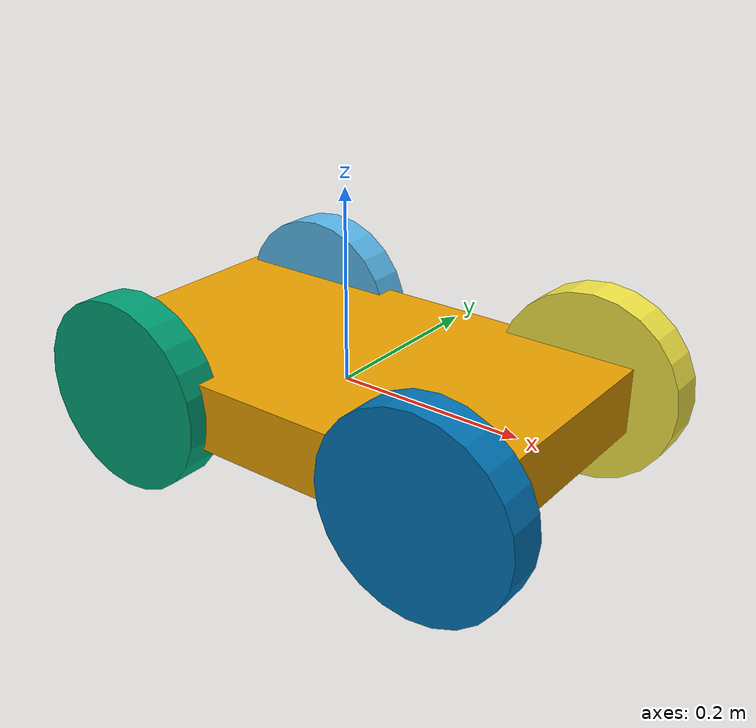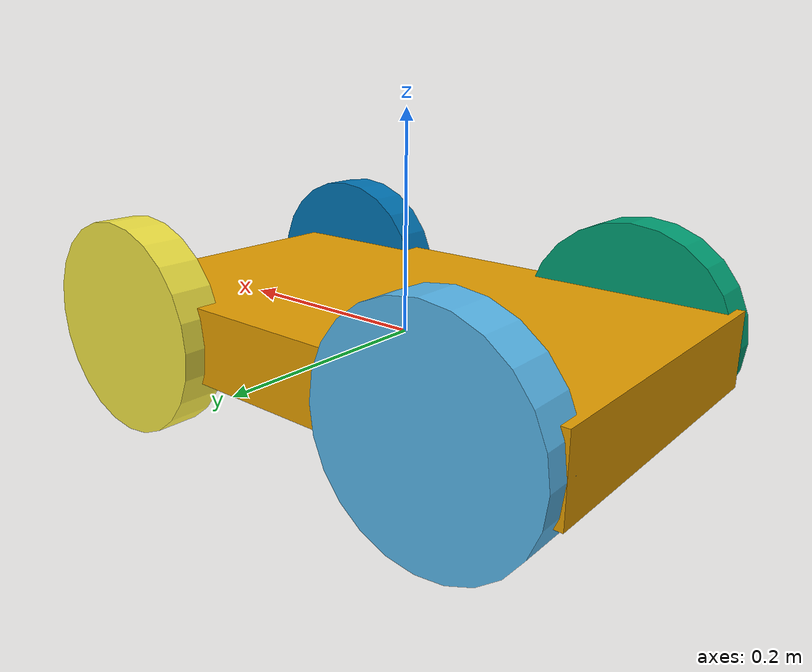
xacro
<?xml version="1.0" ?>
<robot name="s2w" xmlns:xacro="https://www.ros.org/wiki/xacro">
    <!--linkki on pala robottia, voidaan määritellä matemaattisesti esim pallo, tai
    käyttää 3d mallinnettua palaa-->

    <!--                 LINK CHASSIS                  -->
    <link name="link_chassis">
        <pose>0 0 0.1 </pose> <!--xyz,roll,pich,yaw RPY-->
        <inertial>
            <mass value="5"/>
            <origin rpy="0 0 0" xyz="0 0 0.1"/>
            <inertia ixx="0.0395" ixy="0" ixz="0" iyy="0.1062" iyz="0" izz="0.1062"/>
        </inertial>

        <collision name="collision_chassis">
            <geometry>
                <box size="0.5 0.3 0.07"/>
            </geometry>
        </collision>

        <visual>
            <geometry>
                <box size="0.5 0.3 0.07"/>
            </geometry>
        </visual>
    </link>

    <!--                 LINK RIGHT WHEEL                  -->
    <link name="link_right_wheel">
        <inertial>
            <mass value="0.2"/>
            <origin rpy="0 1.5707 1.5707" xyz="0 0 0"/>
            <inertia ixx="0.0005266" ixy="0" ixz="0" iyy="0.0005266" iyz="0" izz="0.001"/>
        </inertial>

        <collision name="collision_right_wheel">
            <geometry>
                <cylinder lenght="0.04" radius="0.1"/>
            </geometry>
        </collision>

        <visual>
            <geometry>
                <cylinder length="0.04" radius="0.1"/>
            </geometry>
        </visual>
    </link>

    <joint name="joint_right_wheel" type="continuous">
        <origin rpy="0 1.5707 1.5707" xyz="-0.15 0.15 0"/>
        <child link="link_right_wheel"/>
        <parent link="link_chassis"/>
        <axis rpy="0 0 0" xyz="0 1 0"/>
        <limit effort="100" velocity="100"/>
        <joint_properties damping="1.0" friction="1.0"/>
    </joint>

    <!--                 LINK LEFT WHEEL                  -->
    <link name="link_left_wheel">
        <inertial>
            <mass value="0.2"/>
            <origin rpy="0 1.5707 1.5707" xyz="0 0 0"/>
            <inertia ixx="0.0005266" ixy="0" ixz="0" iyy="0.0005266" iyz="0" izz="0.001"/>
        </inertial>

        <collision name="collision_left_wheel">
            <geometry>
                <cylinder lenght="0.04" radius="0.1"/>
            </geometry>
        </collision>

        <visual>
            <geometry>
                <cylinder length="0.04" radius="0.1"/>
            </geometry>
        </visual>
    </link>
    <joint name="joint_left_wheel" type="continuous">
        <origin rpy="0 1.5707 1.5707" xyz="-0.15 -0.15 0"/>
        <child link="link_left_wheel"/>
        <parent link="link_chassis"/>
        <axis rpy="0 0 0" xyz="0 1 0"/>
        <limit effort="100" velocity="100"/>
        <joint_properties damping="1.0" friction="1.0"/>
    </joint>

    <!--                 LINK RIGHT BACK WHEEL                  -->
    <link name="link_right_back_wheel">
        <inertial>
            <mass value="0.2"/>
            <origin rpy="0 1.5707 1.5707" xyz="0 0 0"/>
            <inertia ixx="0.0005266" ixy="0" ixz="0" iyy="0.0005266" iyz="0" izz="0.001"/>
        </inertial>

        <collision name="collision_right_back_wheel">
            <geometry>
                <cylinder lenght="0.04" radius="0.1"/>
            </geometry>
        </collision>

        <visual>
            <geometry>
                <cylinder length="0.04" radius="0.1"/>
            </geometry>
        </visual>
    </link>

    <joint name="joint_right_back_wheel" type="continuous">
        <origin rpy="0 1.5707 1.5707" xyz="0.2 0.15 0"/>
        <child link="link_right_back_wheel"/>
        <parent link="link_chassis"/>
        <axis rpy="0 0 0" xyz="0 0 0"/>
        <limit effort="100" velocity="100"/>
        <joint_properties damping="1.0" friction="1.0"/>
    </joint>

<!--                 LINK LEFT BACK WHEEL                  -->
<link name="link_left_back_wheel">
        <inertial>
            <mass value="0.2"/>
            <origin rpy="0 1.5707 1.5707" xyz="0 0 0"/>
            <inertia ixx="0.0005266" ixy="0" ixz="0" iyy="0.0005266" iyz="0" izz="0.001"/>
        </inertial>

        <collision name="collision_left_back_wheel">
            <geometry>
                <cylinder lenght="0.04" radius="0.1"/>
            </geometry>
        </collision>

        <visual>
            <geometry>
                <cylinder length="0.04" radius="0.1"/>
            </geometry>
        </visual>
    </link>
    <joint name="joint_left_back_wheel" type="continuous">
        <origin rpy="0 1.5707 1.5707" xyz="0.2 -0.15 0"/>
        <child link="link_left_back_wheel"/>
        <parent link="link_chassis"/>
        <axis rpy="0 0 0" xyz="0 1 0"/>
        <limit effort="100" velocity="100"/>
        <joint_properties damping="1.0" friction="1.0"/>
    </joint>

</robot>
